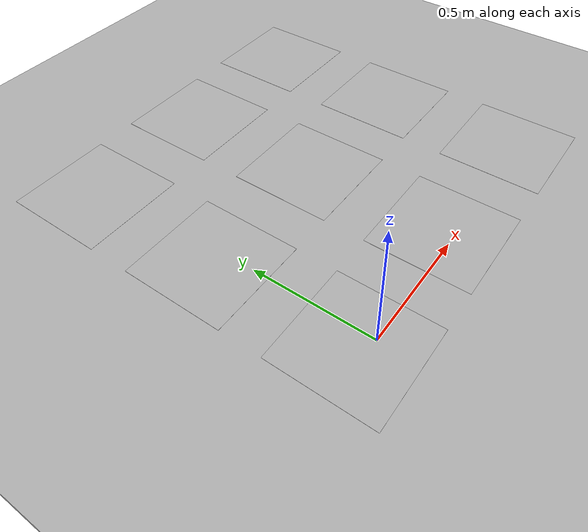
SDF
<sdf version="1.7">
 <world name="default">
  <light name="sun" type="directional">
   <pose>0 0 10 0 -0 0</pose>
   <diffuse>0.8 0.8 0.8 1</diffuse>
   <specular>0.2 0.2 0.2 1</specular>
   <attenuation>
    <range>1000</range>
    <constant>0.9</constant>
    <linear>0.01</linear>
    <quadratic>0.001</quadratic>
   </attenuation>
   <direction>-0.5 0.1 -0.9</direction>
   <spot><inner_angle>0</inner_angle><outer_angle>0</outer_angle><falloff>0</falloff></spot>
  </light>
  <model name="parquet_plane">
   <static>1</static>
   <link name="link">
    <collision name="collision"><geometry><box><size>200 200 0.02</size></box></geometry></collision>
    <visual name="visual">
     <cast_shadows>0</cast_shadows>
     <geometry><box><size>200 200 0.02</size></box></geometry>
     <material>
      <script>
       <uri>model://parquet_plane/materials/scripts</uri>
       <uri>model://parquet_plane/materials/textures</uri>
       <name>parquet</name>
      </script>
     </material>
    </visual>
   </link>
   <pose>0 0 -0.01 0 -0 0</pose>
  </model>
  <scene>
   <ambient>0.8 0.8 0.8 1</ambient>
   <background>0.8 0.9 1 1</background>
   <shadows>0</shadows>
   <grid>0</grid>
   <origin_visual>0</origin_visual>
  </scene>
  <physics name="default_physics" default="0" type="ode">
   <ode>
    <solver>
     <type>quick</type>
     <iters>10</iters>
     <sor>1.3</sor>
     <use_dynamic_moi_rescaling>0</use_dynamic_moi_rescaling>
    </solver>
    <constraints>
     <cfm>0</cfm>
     <erp>0.2</erp>
     <contact_max_correcting_vel>100</contact_max_correcting_vel>
     <contact_surface_layer>0.001</contact_surface_layer>
    </constraints>
   </ode>
   <max_step_size>0.004</max_step_size>
   <real_time_factor>1</real_time_factor>
   <real_time_update_rate>250</real_time_update_rate>
  </physics>
  <gravity>0 0 -9.8066</gravity>
  <magnetic_field>6e-06 2.3e-05 -4.2e-05</magnetic_field>
  <atmosphere type="adiabatic"/>
  <spherical_coordinates>
   <surface_model>EARTH_WGS84</surface_model>
   <latitude_deg>0</latitude_deg>
   <longitude_deg>0</longitude_deg>
   <elevation>0</elevation>
   <heading_deg>0</heading_deg>
  </spherical_coordinates>
  <model name="aruco_2_9">
   <static>1</static>
   <link name="aruco_2_9_link">
    <visual name="visual_marker_2_129">
     <pose>0 0 0 0 -0 1.5708</pose>
     <cast_shadows>0</cast_shadows>
     <geometry><box><size>0.426667 0.426667 0.001</size></box></geometry>
     <material>
      <script>
       <uri>model://aruco_map_drones_laboratory_txt/materials/scripts</uri>
       <uri>model://aruco_map_drones_laboratory_txt/materials/textures</uri>
       <name>aruco/marker_2_129</name>
      </script>
     </material>
    </visual>
    <visual name="visual_marker_2_130">
     <pose>0.6 0 0 0 -0 1.5708</pose>
     <cast_shadows>0</cast_shadows>
     <geometry><box><size>0.426667 0.426667 0.001</size></box></geometry>
     <material>
      <script>
       <uri>model://aruco_map_drones_laboratory_txt/materials/scripts</uri>
       <uri>model://aruco_map_drones_laboratory_txt/materials/textures</uri>
       <name>aruco/marker_2_130</name>
      </script>
     </material>
    </visual>
    <visual name="visual_marker_2_131">
     <pose>1.2 0 0 0 -0 1.5708</pose>
     <cast_shadows>0</cast_shadows>
     <geometry><box><size>0.426667 0.426667 0.001</size></box></geometry>
     <material>
      <script>
       <uri>model://aruco_map_drones_laboratory_txt/materials/scripts</uri>
       <uri>model://aruco_map_drones_laboratory_txt/materials/textures</uri>
       <name>aruco/marker_2_131</name>
      </script>
     </material>
    </visual>
    <visual name="visual_marker_2_133">
     <pose>0 0.6 0 0 -0 1.5708</pose>
     <cast_shadows>0</cast_shadows>
     <geometry><box><size>0.426667 0.426667 0.001</size></box></geometry>
     <material>
      <script>
       <uri>model://aruco_map_drones_laboratory_txt/materials/scripts</uri>
       <uri>model://aruco_map_drones_laboratory_txt/materials/textures</uri>
       <name>aruco/marker_2_133</name>
      </script>
     </material>
    </visual>
    <visual name="visual_marker_2_134">
     <pose>0.6 0.6 0 0 -0 1.5708</pose>
     <cast_shadows>0</cast_shadows>
     <geometry><box><size>0.426667 0.426667 0.001</size></box></geometry>
     <material>
      <script>
       <uri>model://aruco_map_drones_laboratory_txt/materials/scripts</uri>
       <uri>model://aruco_map_drones_laboratory_txt/materials/textures</uri>
       <name>aruco/marker_2_134</name>
      </script>
     </material>
    </visual>
    <visual name="visual_marker_2_135">
     <pose>1.2 0.6 0 0 -0 1.5708</pose>
     <cast_shadows>0</cast_shadows>
     <geometry><box><size>0.426667 0.426667 0.001</size></box></geometry>
     <material>
      <script>
       <uri>model://aruco_map_drones_laboratory_txt/materials/scripts</uri>
       <uri>model://aruco_map_drones_laboratory_txt/materials/textures</uri>
       <name>aruco/marker_2_135</name>
      </script>
     </material>
    </visual>
    <visual name="visual_marker_2_137">
     <pose>0 1.2 0 0 -0 1.5708</pose>
     <cast_shadows>0</cast_shadows>
     <geometry><box><size>0.426667 0.426667 0.001</size></box></geometry>
     <material>
      <script>
       <uri>model://aruco_map_drones_laboratory_txt/materials/scripts</uri>
       <uri>model://aruco_map_drones_laboratory_txt/materials/textures</uri>
       <name>aruco/marker_2_137</name>
      </script>
     </material>
    </visual>
    <visual name="visual_marker_2_138">
     <pose>0.6 1.2 0 0 -0 1.5708</pose>
     <cast_shadows>0</cast_shadows>
     <geometry><box><size>0.426667 0.426667 0.001</size></box></geometry>
     <material>
      <script>
       <uri>model://aruco_map_drones_laboratory_txt/materials/scripts</uri>
       <uri>model://aruco_map_drones_laboratory_txt/materials/textures</uri>
       <name>aruco/marker_2_138</name>
      </script>
     </material>
    </visual>
    <visual name="visual_marker_2_139">
     <pose>1.2 1.2 0 0 -0 1.5708</pose>
     <cast_shadows>0</cast_shadows>
     <geometry><box><size>0.426667 0.426667 0.001</size></box></geometry>
     <material>
      <script>
       <uri>model://aruco_map_drones_laboratory_txt/materials/scripts</uri>
       <uri>model://aruco_map_drones_laboratory_txt/materials/textures</uri>
       <name>aruco/marker_2_139</name>
      </script>
     </material>
    </visual>
   </link>
   <pose>-0.047752 0.047751 0 0 -0 0</pose>
  </model>
 </world>
</sdf>
